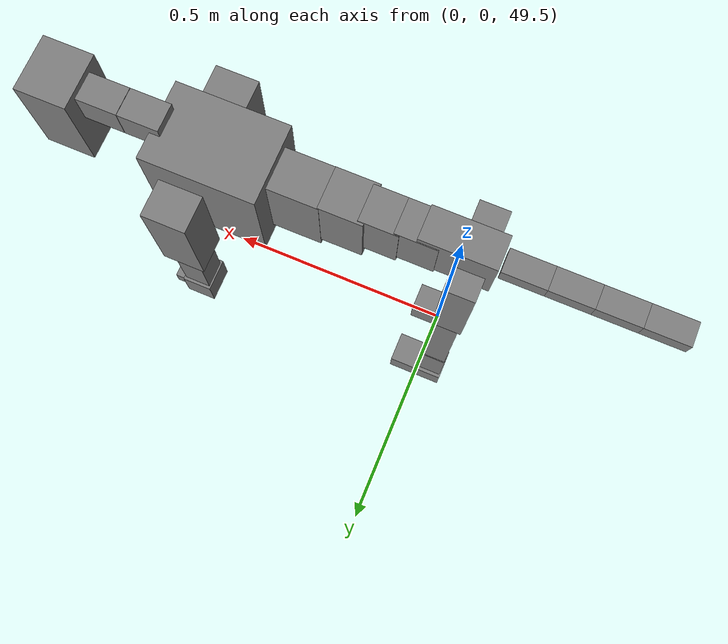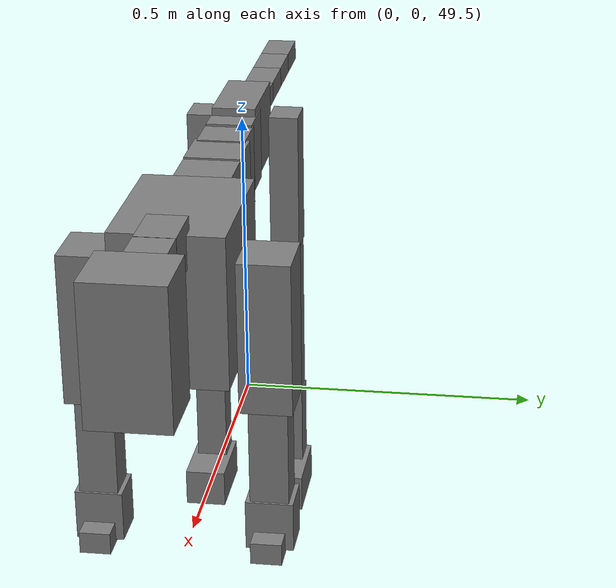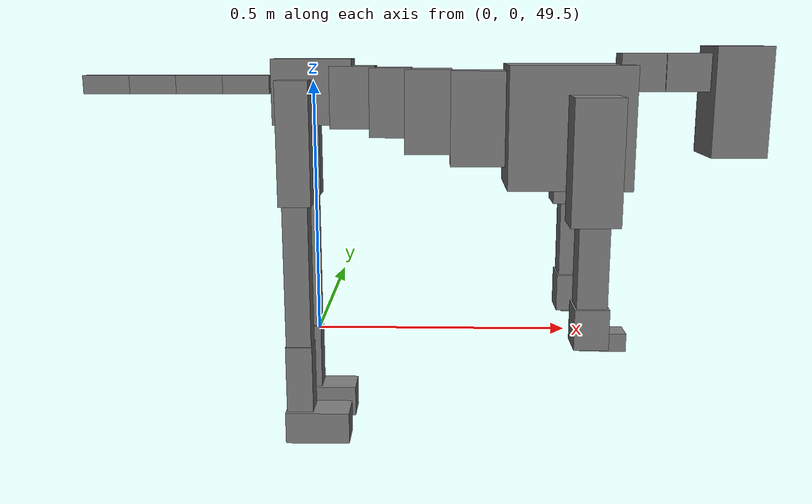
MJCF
<mujoco model="dog">

    <default>
        <joint armature="0.02" stiffness="1" damping="0.2" limited="true"/>
        <geom condim="3" friction="1 0.05 0.05" margin="0.01"/>
        <motor ctrllimited="true" ctrlrange="-1.0 1.0" forcelimited="true" gear="50"/>
    </default>

    <compiler inertiafromgeom="true" angle="radian"/>

    <option timestep="0.016" iterations="50" tolerance="1e-10" solver="Newton" jacobian="dense" cone="pyramidal"/>

    <size nconmax="20000" njmax="60000" nstack="5000000"/>
    <visual>
        <map force="0.1" zfar="30"/>
        <rgba haze="0.15 0.25 0.35 1"/>
        <quality shadowsize="2048"/>
        <global offwidth="800" offheight="800"/>
    </visual>

    <asset>
        <texture type="skybox" builtin="gradient" rgb1="0.3 0.5 0.7" rgb2="0 0 0" width="512" height="512"/>
        <texture name="texplane" type="2d" builtin="checker" rgb1=".2 .3 .4" rgb2=".1 0.15 0.2" width="512" height="512"
                 mark="cross" markrgb=".8 .8 .8"/>
        <texture name="texgeom" type="cube" builtin="flat" mark="cross" width="127" height="1278" rgb1="0.8 0.6 0.4"
                 rgb2="0.8 0.6 0.4" markrgb="1 1 1" random="0.01"/>

        <material name="matplane" reflectance="0.3" texture="texplane" texrepeat="1 1" texuniform="true"/>
        <material name="matgeom" texture="texgeom" texuniform="true" rgba="0.8 0.6 .4 1"/>
    </asset>

    <worldbody>
        <geom name="floor" pos="0 0 0" size="0 0 .25" type="plane" material="matplane" condim="3"/>

        <light directional="false" diffuse=".2 .2 .2" specular="0 0 0" pos="0 0 5" dir="0 0 -1" castshadow="false"/>
        <light mode="targetbodycom" target="torso" directional="false" diffuse=".8 .8 .8" specular="0.3 0.3 0.3"
               pos="0 0 4.0" dir="0 0 -1"/>

        <body name="root" pos="0 0 50">
            <freejoint name="root_1"/>
            <geom type="box" pos="0 0 -0.02" size="0.0774  0.0358  0.063" density="2030"/>

            <body name="spine1" pos="0.054 0 0">
                <joint name="spine1_y" axis="0 1 0" range="0 0.7" limited="true"/>
                <geom type="box" pos="0.02375 0 -0.03" size="0.04375  0.0375  0.05985" density="2030"/>

                <body name="spine2" pos="0.0612 0 0">
                    <joint name="spine2_y" axis="0 1 0" range="-0.15 0.15" limited="true"/>
                    <geom type="box" pos="0.03555  0  -0.04" size="0.04055  0.039  0.06615" density="2030"/>

                    <body name="spine3" pos="0.0730 0 0">
                        <joint name="spine3_y" axis="0 1 0" range="-0.15 0.15" limited="true"/>
                        <geom type="box" pos="0.03555  0  -0.057" size="0.04555  0.0445  0.081" density="2030"/>

                        <body name="spine4" pos="0.0780 0 0">
                            <joint name="spine4_y" axis="0 1 0" range="-0.15 0.15" limited="true"/>
                            <geom type="box" pos="0.05265  0  -0.07" size="0.05265  0.045  0.09135" density="2030"/>

                            <body name="torso" pos="0.1082 0 0">
                                <joint name="torso_y" axis="0 1 0" range="-0.15 0.15" limited="true"/>
                                <geom type="box" pos="0.11925  0  -0.085" size="0.11925  0.085  0.11745"
                                      density="2030"/>

                                <body name="neck1" pos="0.2160  0   0.0180">
                                    <joint name="neck1_y" axis="0 1 0" range="-1.2  -1" limited="true"/>
                                    <geom type="box" pos="0.0423  0  0" size="0.0423  0.03  0.036" density="2325"/>

                                    <body name="neck2" pos="0.0853  0  0">
                                        <joint name="neck2_y" axis="0 1 0" range="0.1  0" limited="true"/>
                                        <geom type="box" pos="0.0423  0  0" size="0.0423  0.03  0.036" density="2325"/>

                                        <body name="head" pos="0.0853  0  0">
                                            <joint name="head_y" axis="0 1 0" range="-0.3  -0.2" limited="true"/>
                                            <geom type="box" pos="0.0531  0  -0.055" size="0.0531  0.06  0.1044"
                                                  density="4030"/>

                                        </body>
                                    </body>
                                </body>

                                <body name="front_shoulder" pos="0.156  0   -0.0480">
                                    <joint name="front_shoulder_y" axis="0 1 0" range="-1 1.5" limited="true"/>
                                    <geom type="box" pos="0 0.13 -0.0908" size="0.0462  0.0395  0.1175" density="1158"/>
                                    <geom type="box" pos="0 -0.13 -0.0908" size="0.0462  0.0395  0.1175"
                                          density="1158"/>

                                    <body name="front_elbow" pos="0  0  -0.1817">
                                        <joint name="front_elbow_y" axis="0 1 0" range="-2 0" limited="true"/>
                                        <geom type="box" pos="0 0.13 -0.0976" size="0.0288  0.0294  0.0976"
                                              density="1081"/>
                                        <geom type="box" pos="0 -0.13 -0.0976" size="0.0288  0.0294  0.0976"
                                              density="1081"/>

                                        <body name="front_wrist" pos="0  0  -0.1952">
                                            <joint name="front_wrist_y" axis="0 1 0" range="-0.2 0" limited="true"/>
                                            <geom type="box" pos="0 0.13 -0.0257" size="0.0326  0.0362  0.0389"
                                                  density="1664"/>
                                            <geom type="box" pos="0 -0.13 -0.0257" size="0.0326  0.0362  0.0389"
                                                  density="1664"/>

                                            <body name="front_finger_end" pos="0  0  -0.0514">
                                                <joint name="front_finger_y" axis="0 1 0" range="-0.4 1"
                                                       limited="true"/>
                                                <geom type="box" pos="0.0236  0.13  -0.0020"
                                                      size="0.0433  0.0236  0.0170" density="1515"/>
                                                <geom type="box" pos="0.0236  -0.13  -0.0020"
                                                      size="0.0433  0.0236  0.0170" density="1515"/>

                                            </body>

                                        </body>
                                    </body>
                                </body>

                            </body>
                        </body>
                    </body>
                </body>
            </body>

            <body name="back_hip" pos="-0.03 0 -0.018">
                <joint name="back_hip_y" axis="0 1 0" range="-1.5 0.3" limited="true"/>
                <geom type="box" pos="0 0.07 -0.0959" size="0.0315  0.0247  0.1187" density="1154"/>
                <geom type="box" pos="0 -0.07 -0.0959" size="0.0315  0.0247  0.1187" density="1154"/>

                <body name="back_knee" pos="0  0  -0.1919">
                    <joint name="back_knee_y" axis="0 1 0" range="0 2.8" limited="true"/>
                    <geom type="box" pos="0 0.07 -0.1567" size="0.0246  0.0242  0.1723" density="1227"/>
                    <geom type="box" pos="0 -0.07 -0.1567" size="0.0246  0.0242  0.1723" density="1227"/>

                    <body name="back_ankle" pos="0  0  -0.3135">
                        <joint name="back_ankle_y" axis="0 1 0" range="-2.2 0" limited="true"/>
                        <geom type="box" pos="0 0.07 -0.0690" size="0.0261  0.0261  0.0803" density="1284"/>
                        <geom type="box" pos="0 -0.07 -0.0690" size="0.0261  0.0261  0.0803" density="1284"/>

                        <body name="back_toe_end" pos="0  0  -0.1380">
                            <joint name="back_toe_y" axis="0 1 0" range="-0.4 1" limited="true"/>
                            <geom type="box" pos="0.0346  0.07  -0.0166" size="0.0634  0.0346  0.0316" density="1515"/>
                            <geom type="box" pos="0.0346  -0.07  -0.0166" size="0.0634  0.0346  0.0316" density="1515"/>

                        </body>
                    </body>
                </body>
            </body>

            <body name="tail1" pos="-0.074 0 -0.006">
                <joint name="tail1_y" axis="0 1 0" range="-0.2 0.2" limited="true"/>
                <geom type="box" pos="-0.0536  0  0" size="0.045  0.025  0.0175" density="1587"/>

                <body name="tail2" pos="-0.09 0 0">
                    <joint name="tail2_y" axis="0 1 0" range="-0.2 0.2" limited="true"/>
                    <geom type="box" pos="-0.0536  0  0" size="0.045  0.025  0.0175" density="1587"/>

                    <body name="tail3" pos="-0.09 0 0">
                        <joint name="tail3_y" axis="0 1 0" range="-0.2 0.2" limited="true"/>
                        <geom type="box" pos="-0.0536  0  0" size="0.045  0.025  0.0175" density="1587"/>

                        <body name="tail4" pos="-0.09 0 0">
                            <joint name="tail4_y" axis="0 1 0" range="-0.2 0.2" limited="true"/>
                            <geom type="box" pos="-0.0536  0  0" size="0.045  0.025  0.0175" density="1587"/>

                        </body>
                    </body>
                </body>
            </body>
        </body>
    </worldbody>

    <actuator>
        <motor joint="spine1_y" forcerange="-150 150     "/>
        <motor joint="spine2_y" forcerange="-150 150     "/>
        <motor joint="spine3_y" forcerange="-150 150     "/>
        <motor joint="spine4_y" forcerange="-150 150     "/>
        <motor joint="torso_y" forcerange="-150 150     "/>
        <motor joint="neck1_y" forcerange="-100 100       "/>
        <motor joint="neck2_y" forcerange="-100 100       "/>
        <motor joint="head_y" forcerange="-150 150       "/>
        <motor joint="front_shoulder_y" forcerange="-166.64 196.62"/>
        <motor joint="front_elbow_y" forcerange="-169.27 144.77"/>
        <motor joint="front_wrist_y" forcerange="-146.55 142.81"/>
        <motor joint="front_finger_y" forcerange="-20.46 65.54"/>
        <motor joint="back_hip_y" forcerange="-281.05 247.91"/>
        <motor joint="back_knee_y" forcerange="-261.89 290.38"/>
        <motor joint="back_angle_y" forcerange="-115.35 201.47"/>
        <motor joint="back_toe_y" forcerange="-81.30 115.48"/>
        <motor joint="tail1_y" forcerange="-50 50     "/>
        <motor joint="tail2_y" forcerange="-50 50     "/>
        <motor joint="tail3_y" forcerange="-50 50     "/>
        <motor joint="tail4_y" forcerange="-50 50     "/>
    </actuator>
</mujoco>
